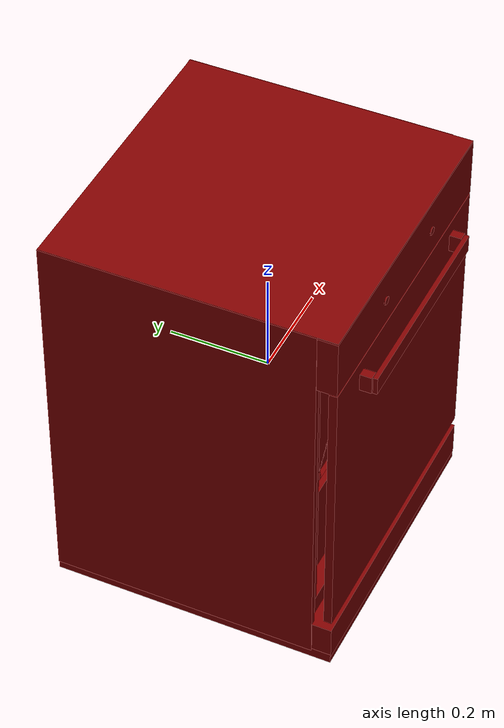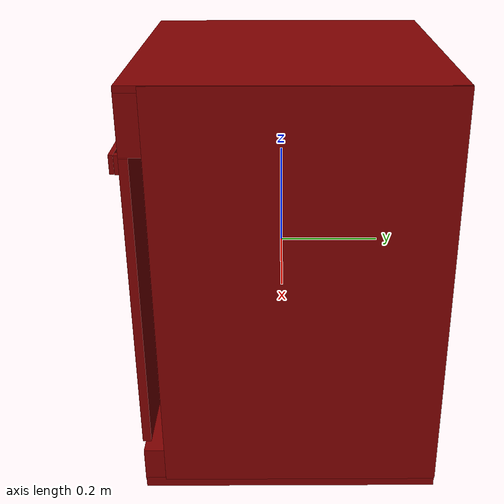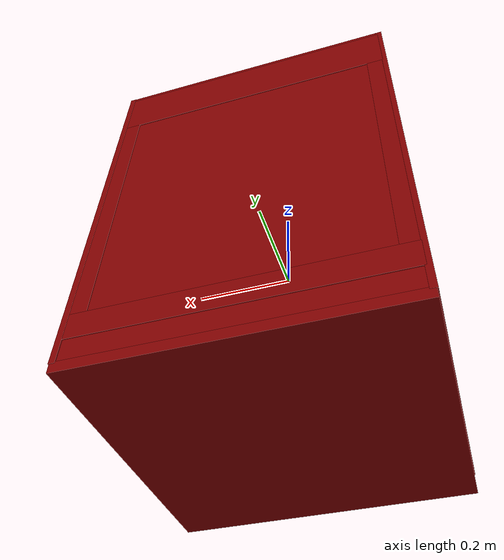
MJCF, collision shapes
<?xml version='1.0' encoding='UTF-8'?>
<mujoco model="model">
  <option timestep="0.002" gravity="0.0 0.0 -9.81"/>
  <compiler angle="radian"/>
  <asset>
    <mesh file="visuals/button_lock.obj" name="button_lock_vis"/>
    <mesh file="visuals/button_power.obj" name="button_power_vis"/>
    <mesh file="visuals/Body001.obj" name="Body001_vis"/>
    <mesh file="visuals/door.obj" name="door_vis"/>
    <mesh file="visuals/rack0.obj" name="rack0_vis"/>
    <mesh file="visuals/rack1.obj" name="rack1_vis"/>
    <texture file="visuals/T_BC001.png" name="Body001_material" type="2d"/>
    <material name="Body001_material" rgba="1 1 1 1.0" texture="Body001_material" shininess="0.5" specular="1.5"/>
    <texture file="visuals/T_BC001.png" name="button_lock_material" type="2d"/>
    <material name="button_lock_material" rgba="1 1 1 1.0" texture="button_lock_material" shininess="0.5" specular="0.3103448502657381"/>
    <texture file="visuals/T_BC001.png" name="button_power_material" type="2d"/>
    <material name="button_power_material" rgba="1 1 1 1.0" texture="button_power_material" shininess="0.5" specular="0.3103448502657381"/>
    <texture file="visuals/T_BC001.png" name="door_material" type="2d"/>
    <material name="door_material" rgba="1 1 1 1.0" texture="door_material" shininess="0.5" specular="1"/>
    <texture file="visuals/T_BC001.png" name="rack0_material" type="2d"/>
    <material name="rack0_material" rgba="1 1 1 1.0" texture="rack0_material" shininess="0.5" specular="2"/>
    <texture file="visuals/T_BC001.png" name="rack1_material" type="2d"/>
    <material name="rack1_material" rgba="1 1 1 1.0" texture="rack1_material" shininess="0.5" specular="2"/>
  </asset>
  <default>
    <default class="visual">
      <geom conaffinity="0" contype="0" group="1" type="mesh"/>
    </default>
    <default class="collision">
      <geom group="0" rgba="0.5 0 0 0.5"/>
    </default>
    <default class="spawn">
      <geom group="0" rgba="1 1 1 0.5" contype="0" conaffinity="0"/>
      <site group="0" rgba="1 1 1 0.5"/>
    </default>
    <default class="region">
      <geom group="1" conaffinity="0" contype="0" rgba="0 1 0 0"/>
    </default>
  </default>
  <worldbody>
    <body>
      <body name="object">
        <geom mesh="Body001_vis" type="mesh" solimp="0.998 0.998 0.001" solref="0.001 1" friction="0.95 0.3 0.1" class="visual" material="Body001_material"/>
        <geom class="collision" type="box" pos="0.00000000 0.28023259 0.00923848" size="0.2974483072757721 0.01758691854774952 0.3919452130794525" quat="1.0 0.0 0.0 0.0"/>
        <geom class="collision" type="box" pos="0.00000000 0.01652933 -0.38985538" size="0.2974483072757721 0.28312113881111145 0.0105096735060215" quat="1.0 0.0 0.0 0.0"/>
        <geom class="collision" type="box" pos="0.00000000 0.01652933 0.39592728" size="0.2974483072757721 0.28312158584594727 0.005803395062685013" quat="1.0 0.0 0.0 0.0"/>
        <geom class="collision" type="box" pos="-0.29314658 0.03568803 0.00923848" size="0.006236113607883453 0.26420560479164124 0.39194661378860474" quat="1.0 0.0 0.0 0.0"/>
        <geom class="collision" type="box" pos="0.29355502 0.03598000 0.00923848" size="0.00556898070499301 0.264498233795166 0.39194709062576294" quat="1.0 0.0 0.0 0.0"/>
        <geom class="collision" type="box" pos="-0.00070958 -0.24606627 0.34120473" size="0.2981281578540802 0.02128114365041256 0.058082692325115204" quat="1.0 0.0 0.0 0.0"/>
        <geom class="collision" type="box" pos="0.00000000 -0.24438491 -0.34873685" size="0.29744240641593933 0.022979695349931717 0.03576326742768288" quat="1.0 0.0 0.0 0.0"/>
        <geom class="collision" type="box" pos="-0.27317214 0.04061445 -0.00186177" size="0.015970002859830856 0.25929391384124756 0.28350600600242615" quat="1.0 0.0 0.0 0.0"/>
        <geom class="collision" type="box" pos="0.27302107 0.04061445 -0.00267194" size="0.016195055097341537 0.25929391384124756 0.28343233466148376" quat="1.0 0.0 0.0 0.0"/>
        <geom class="collision" type="box" pos="-0.00001626 0.04061445 0.33587483" size="0.2906419038772583 0.25929564237594604 0.05766905099153519" quat="1.0 0.0 0.0 0.0"/>
        <geom class="collision" type="box" pos="-0.00043224 0.04061445 -0.30906609" size="0.29022595286369324 0.25929516553878784 0.026424413546919823" quat="1.0 0.0 0.0 0.0"/>
        <body name="button_lock">
          <joint axis="0.0 1.0 0.0" pos="0.10144468 -0.26970397 0.34194511" limited="true" name="button_lock_joint" range="0.0 0.0012" type="slide" damping="1" frictionloss="1" armature=".01" stiffness="4" springref="-1"/>
          <geom mesh="button_lock_vis" type="mesh" solimp="0.998 0.998 0.001" solref="0.001 1" friction="0.95 0.3 0.1" class="visual" material="button_lock_material"/>
          <geom class="collision" type="cylinder" pos="0.10133774 -0.27087246 0.34192067" size="0.00803416594862938 0.0010736096883192658" quat="0.7071067094802856 0.7071068286895752 0.0 0.0"/>
        </body>
        <body name="button_power">
          <joint axis="0.0 1.0 0.0" pos="-0.10146830 -0.26970397 0.34194511" limited="true" name="button_power_joint" range="0.0 0.0012" type="slide" damping="1" frictionloss="1" armature=".01" stiffness="4" springref="-1"/>
          <geom mesh="button_power_vis" type="mesh" solimp="0.998 0.998 0.001" solref="0.001 1" friction="0.95 0.3 0.1" class="visual" material="button_power_material"/>
          <geom class="collision" type="cylinder" pos="-0.10142317 -0.27093090 0.34192067" size="0.00803416594862938 0.0010736096883192658" quat="0.7071067094802856 0.7071068286895752 0.0 0.0"/>
        </body>
        <body name="door">
          <joint axis="1.0 0.0 0.0" pos="-0.00146813 -0.26781762791479824 -0.2915180573451996" limited="true" name="door_joint" range="0.0 0.6035987755982988" type="hinge" damping="1" frictionloss="10" armature="1" stiffness="2"/>
          <geom mesh="door_vis" type="mesh" solimp="0.998 0.998 0.001" solref="0.001 1" friction="0.95 0.3 0.1" class="visual" material="door_material"/>
          <geom class="collision" type="box" pos="-0.00146813 -0.25969495 -0.00535130" size="0.29671090841293335 0.00812267791479826 0.2861667573451996" quat="1.0 0.0 0.0 0.0" name="door_main"/>
          <geom class="collision" type="box" pos="0.00149450 -0.29816349 0.24046911" size="0.2078951597213745 0.0043100034818053246 0.017797604203224182" quat="1.0 0.0 0.0 0.0" name="door_handle_main"/>
          <geom class="collision" type="box" pos="0.20415612 -0.28122191 0.24046910" size="0.00872084591537714 0.011564495041966438 0.01779758930206299" quat="1.0 0.0 0.0 0.0"/>
          <geom class="collision" type="box" pos="-0.19982393 -0.28122191 0.24046913" size="0.00872084591537714 0.011564495041966438 0.01779758930206299" quat="1.0 0.0 0.0 0.0"/>
        </body>
        <body name="rack0">
          <geom class="region" name="reg_rack0" type="box" pos="-0.0006009049999999988 0.026985384999999987 -0.106687155" size="0.21967144500000002 0.21001071500000001 0.116482165"/>
          <joint axis="0.0 -1.0 0.0" pos="0.00157052 0.02678297 -0.13533516" limited="true" name="rack0_joint" range="0.0 0.065" type="slide" damping="1" frictionloss="1" armature=".01" stiffness="0.05"/>
          <geom mesh="rack0_vis" type="mesh" solimp="0.998 0.998 0.001" solref="0.001 1" friction="0.95 0.3 0.1" class="visual" material="rack0_material"/>
          <geom class="collision" type="box" pos="-0.24047074 0.02570850 -0.13568881" size="0.005536212120205164 0.23354065418243408 0.10069926083087921" quat="1.0 0.0 0.0 0.0"/>
          <geom class="collision" type="box" pos="0.24430199 0.02570850 -0.13568881" size="0.005536212120205164 0.23354122042655945 0.10069926083087921" quat="1.0 0.0 0.0 0.0"/>
          <geom class="collision" type="box" pos="0.00025346 0.25270723 -0.13435307" size="0.2335447371006012 0.005536173470318317 0.09926482290029526" quat="1.0 0.0 0.0 0.0"/>
          <geom class="collision" type="box" pos="0.00025346 0.02600502 -0.23255304" size="0.23653914034366608 0.229714035987854 0.0023557692766189575" quat="1.0 0.0 0.0 0.0"/>
          <geom class="collision" type="box" pos="-0.14977731 -0.20203042 -0.13279901" size="0.08351397514343262 0.005536250304430723 0.09600427746772766" quat="1.0 0.0 0.0 0.0"/>
          <geom class="collision" type="box" pos="0.00025346 -0.20203042 -0.18936542" size="0.2335447371006012 0.005536250304430723 0.039437856525182724" quat="1.0 0.0 0.0 0.0"/>
          <geom class="collision" type="box" pos="0.17224070 -0.20203042 -0.13279901" size="0.07321833819150925 0.005536250304430723 0.09600427746772766" quat="1.0 0.0 0.0 0.0"/>
          <geom class="collision" type="box" pos="0.01558548 -0.19978114 -0.08121934" size="0.08813342452049255 0.0038762132171541452 0.0038762132171541452" quat="1.0 0.0 0.0 0.0"/>
          <geom class="collision" type="box" pos="0.01558548 -0.20410076 -0.03870263" size="0.08813340216875076 0.0038762118201702833 0.0038762118201702833" quat="1.0 0.0 0.0 0.0"/>
          <geom class="collision" type="cylinder" pos="-0.01910914 0.17065142 -0.17214993" size="0.0025402321480214596 0.061900075525045395" quat="4.3319283804521547e-07 -2.0873290651479692e-08 0.0992436558008194 -0.9950631856918335"/>
          <geom class="collision" type="cylinder" pos="-0.01910915 0.08196175 -0.17207639" size="0.0025402321480214596 0.061900075525045395" quat="7.976017286637216e-07 -4.665985642304804e-08 -0.08496012538671494 -0.99638432264328"/>
          <geom class="collision" type="cylinder" pos="-0.01910915 -0.02579092 -0.17218566" size="0.0025402321480214596 0.0619000680744648" quat="5.6451420960002e-07 -8.122519545850082e-08 -0.1087351143360138 -0.9940707683563232"/>
          <geom class="collision" type="cylinder" pos="-0.01910915 -0.13231845 -0.17207639" size="0.0025402321480214596 0.061900075525045395" quat="7.976017286637216e-07 -4.665985642304804e-08 -0.08496012538671494 -0.99638432264328"/>
          <geom class="collision" type="cylinder" pos="-0.05855283 0.17094482 -0.17209080" size="0.0025402321480214596 0.061900075525045395" quat="4.3319283804521547e-07 -2.0873290651479692e-08 0.0992436558008194 -0.9950631856918335"/>
          <geom class="collision" type="cylinder" pos="-0.05855283 0.08225673 -0.17212705" size="0.0025402321480214596 0.061900075525045395" quat="7.976017286637216e-07 -4.665985642304804e-08 -0.08496012538671494 -0.99638432264328"/>
          <geom class="collision" type="cylinder" pos="-0.05855283 -0.02549870 -0.17225036" size="0.0025402321480214596 0.0619000680744648" quat="5.6451420960002e-07 -8.122519545850082e-08 -0.1087351143360138 -0.9940707683563232"/>
          <geom class="collision" type="cylinder" pos="-0.05855283 -0.13202347 -0.17212705" size="0.0025402321480214596 0.061900075525045395" quat="7.976017286637216e-07 -4.665985642304804e-08 -0.08496012538671494 -0.99638432264328"/>
          <geom class="collision" type="cylinder" pos="-0.09647948 0.17094482 -0.17209080" size="0.0025402321480214596 0.061900075525045395" quat="4.3319283804521547e-07 -2.0873290651479692e-08 0.0992436558008194 -0.9950631856918335"/>
          <geom class="collision" type="cylinder" pos="-0.09647948 0.08225673 -0.17212705" size="0.0025402321480214596 0.061900075525045395" quat="7.976017286637216e-07 -4.665985642304804e-08 -0.08496012538671494 -0.99638432264328"/>
          <geom class="collision" type="cylinder" pos="-0.09647948 -0.02549870 -0.17225036" size="0.0025402321480214596 0.0619000680744648" quat="5.6451420960002e-07 -8.122519545850082e-08 -0.1087351143360138 -0.9940707683563232"/>
          <geom class="collision" type="cylinder" pos="-0.09647948 -0.13202347 -0.17212705" size="0.0025402321480214596 0.061900075525045395" quat="7.976017286637216e-07 -4.665985642304804e-08 -0.08496012538671494 -0.99638432264328"/>
          <geom class="collision" type="cylinder" pos="-0.13537984 0.17094482 -0.17209080" size="0.0025402321480214596 0.061900075525045395" quat="4.3319283804521547e-07 -2.0873290651479692e-08 0.0992436558008194 -0.9950631856918335"/>
          <geom class="collision" type="cylinder" pos="-0.13537984 0.08225673 -0.17212705" size="0.0025402321480214596 0.061900075525045395" quat="7.976017286637216e-07 -4.665985642304804e-08 -0.08496012538671494 -0.99638432264328"/>
          <geom class="collision" type="cylinder" pos="-0.13537984 -0.02549870 -0.17225036" size="0.0025402321480214596 0.0619000680744648" quat="5.6451420960002e-07 -8.122519545850082e-08 -0.1087351143360138 -0.9940707683563232"/>
          <geom class="collision" type="cylinder" pos="-0.13537984 -0.13202347 -0.17212705" size="0.0025402321480214596 0.061900075525045395" quat="7.976017286637216e-07 -4.665985642304804e-08 -0.08496012538671494 -0.99638432264328"/>
          <geom class="collision" type="cylinder" pos="-0.16553205 0.17094481 -0.17209083" size="0.0025402321480214596 0.061900075525045395" quat="4.3319283804521547e-07 -2.0873290651479692e-08 0.0992436558008194 -0.9950631856918335"/>
          <geom class="collision" type="cylinder" pos="-0.16553205 0.08225671 -0.17212707" size="0.0025402321480214596 0.061900075525045395" quat="7.976017286637216e-07 -4.665985642304804e-08 -0.08496012538671494 -0.99638432264328"/>
          <geom class="collision" type="cylinder" pos="-0.16553205 -0.02549872 -0.17225038" size="0.0025402321480214596 0.0619000680744648" quat="5.6451420960002e-07 -8.122519545850082e-08 -0.1087351143360138 -0.9940707683563232"/>
          <geom class="collision" type="cylinder" pos="-0.16553205 -0.13202350 -0.17212707" size="0.0025402321480214596 0.061900075525045395" quat="7.976017286637216e-07 -4.665985642304804e-08 -0.08496012538671494 -0.99638432264328"/>
          <geom class="collision" type="cylinder" pos="-0.20472381 0.17094481 -0.17209083" size="0.0025402321480214596 0.061900075525045395" quat="4.3319283804521547e-07 -2.0873290651479692e-08 0.0992436558008194 -0.9950631856918335"/>
          <geom class="collision" type="cylinder" pos="-0.20472381 0.08225671 -0.17212707" size="0.0025402321480214596 0.061900075525045395" quat="7.976017286637216e-07 -4.665985642304804e-08 -0.08496012538671494 -0.99638432264328"/>
          <geom class="collision" type="cylinder" pos="-0.20472381 -0.02549872 -0.17225038" size="0.0025402321480214596 0.0619000680744648" quat="5.6451420960002e-07 -8.122519545850082e-08 -0.1087351143360138 -0.9940707683563232"/>
          <geom class="collision" type="cylinder" pos="-0.20472381 -0.13202350 -0.17212707" size="0.0025402321480214596 0.061900075525045395" quat="7.976017286637216e-07 -4.665985642304804e-08 -0.08496012538671494 -0.99638432264328"/>
          <geom class="collision" type="cylinder" pos="0.01846163 0.17094482 -0.17209080" size="0.0025402321480214596 0.061900075525045395" quat="4.3319283804521547e-07 -2.0873290651479692e-08 0.0992436558008194 -0.9950631856918335"/>
          <geom class="collision" type="cylinder" pos="0.01846163 0.08225673 -0.17212705" size="0.0025402321480214596 0.061900075525045395" quat="7.976017286637216e-07 -4.665985642304804e-08 -0.08496012538671494 -0.99638432264328"/>
          <geom class="collision" type="cylinder" pos="0.01846163 -0.02549870 -0.17225036" size="0.0025402321480214596 0.0619000680744648" quat="5.6451420960002e-07 -8.122519545850082e-08 -0.1087351143360138 -0.9940707683563232"/>
          <geom class="collision" type="cylinder" pos="0.01846163 -0.13202347 -0.17212705" size="0.0025402321480214596 0.061900075525045395" quat="7.976017286637216e-07 -4.665985642304804e-08 -0.08496012538671494 -0.99638432264328"/>
          <geom class="collision" type="cylinder" pos="0.05753631 0.17094482 -0.17209080" size="0.0025402321480214596 0.061900075525045395" quat="4.3319283804521547e-07 -2.0873290651479692e-08 0.0992436558008194 -0.9950631856918335"/>
          <geom class="collision" type="cylinder" pos="0.05753631 0.08225673 -0.17212705" size="0.0025402321480214596 0.061900075525045395" quat="7.976017286637216e-07 -4.665985642304804e-08 -0.08496012538671494 -0.99638432264328"/>
          <geom class="collision" type="cylinder" pos="0.05753631 -0.02549870 -0.17225036" size="0.0025402321480214596 0.0619000680744648" quat="5.6451420960002e-07 -8.122519545850082e-08 -0.1087351143360138 -0.9940707683563232"/>
          <geom class="collision" type="cylinder" pos="0.05753631 -0.13202347 -0.17212705" size="0.0025402321480214596 0.061900075525045395" quat="7.976017286637216e-07 -4.665985642304804e-08 -0.08496012538671494 -0.99638432264328"/>
          <geom class="collision" type="cylinder" pos="0.09570927 0.17094482 -0.17209080" size="0.0025402321480214596 0.061900075525045395" quat="4.3319283804521547e-07 -2.0873290651479692e-08 0.0992436558008194 -0.9950631856918335"/>
          <geom class="collision" type="cylinder" pos="0.09570927 0.08225673 -0.17212705" size="0.0025402321480214596 0.061900075525045395" quat="7.976017286637216e-07 -4.665985642304804e-08 -0.08496012538671494 -0.99638432264328"/>
          <geom class="collision" type="cylinder" pos="0.09570927 -0.02549870 -0.17225036" size="0.0025402321480214596 0.0619000680744648" quat="5.6451420960002e-07 -8.122519545850082e-08 -0.1087351143360138 -0.9940707683563232"/>
          <geom class="collision" type="cylinder" pos="0.09570927 -0.13202347 -0.17212705" size="0.0025402321480214596 0.061900075525045395" quat="7.976017286637216e-07 -4.665985642304804e-08 -0.08496012538671494 -0.99638432264328"/>
          <geom class="collision" type="cylinder" pos="0.13423637 0.17094482 -0.17209080" size="0.0025402321480214596 0.061900075525045395" quat="4.3319283804521547e-07 -2.0873290651479692e-08 0.0992436558008194 -0.9950631856918335"/>
          <geom class="collision" type="cylinder" pos="0.13423637 0.08225673 -0.17212705" size="0.0025402321480214596 0.061900075525045395" quat="7.976017286637216e-07 -4.665985642304804e-08 -0.08496012538671494 -0.99638432264328"/>
          <geom class="collision" type="cylinder" pos="0.13423637 -0.02549870 -0.17225036" size="0.0025402321480214596 0.0619000680744648" quat="5.6451420960002e-07 -8.122519545850082e-08 -0.1087351143360138 -0.9940707683563232"/>
          <geom class="collision" type="cylinder" pos="0.13423637 -0.13202347 -0.17212705" size="0.0025402321480214596 0.061900075525045395" quat="7.976017286637216e-07 -4.665985642304804e-08 -0.08496012538671494 -0.99638432264328"/>
          <geom class="collision" type="cylinder" pos="0.17325029 0.17094482 -0.17209080" size="0.0025402321480214596 0.061900075525045395" quat="4.3319283804521547e-07 -2.0873290651479692e-08 0.0992436558008194 -0.9950631856918335"/>
          <geom class="collision" type="cylinder" pos="0.17325029 0.08225673 -0.17212705" size="0.0025402321480214596 0.061900075525045395" quat="7.976017286637216e-07 -4.665985642304804e-08 -0.08496012538671494 -0.99638432264328"/>
          <geom class="collision" type="cylinder" pos="0.17325029 -0.02549870 -0.17225036" size="0.0025402321480214596 0.0619000680744648" quat="5.6451420960002e-07 -8.122519545850082e-08 -0.1087351143360138 -0.9940707683563232"/>
          <geom class="collision" type="cylinder" pos="0.17325029 -0.13202347 -0.17212705" size="0.0025402321480214596 0.061900075525045395" quat="7.976017286637216e-07 -4.665985642304804e-08 -0.08496012538671494 -0.99638432264328"/>
          <geom class="collision" type="cylinder" pos="0.21194369 0.17094482 -0.17209080" size="0.0025402321480214596 0.061900075525045395" quat="4.3319283804521547e-07 -2.0873290651479692e-08 0.0992436558008194 -0.9950631856918335"/>
          <geom class="collision" type="cylinder" pos="0.21194369 0.08225673 -0.17212705" size="0.0025402321480214596 0.061900075525045395" quat="7.976017286637216e-07 -4.665985642304804e-08 -0.08496012538671494 -0.99638432264328"/>
          <geom class="collision" type="cylinder" pos="0.21194369 -0.02549870 -0.17225036" size="0.0025402321480214596 0.0619000680744648" quat="5.6451420960002e-07 -8.122519545850082e-08 -0.1087351143360138 -0.9940707683563232"/>
          <geom class="collision" type="cylinder" pos="0.21194369 -0.13202347 -0.17212705" size="0.0025402321480214596 0.061900075525045395" quat="7.976017286637216e-07 -4.665985642304804e-08 -0.08496012538671494 -0.99638432264328"/>
        </body>
        <body name="rack1">
          <geom class="region" name="reg_rack1" type="box" pos="0.002971575000000004 0.027132309999999993 0.15194739499999999" size="0.225257065 0.20880156 0.120845555"/>
          <joint axis="0.0 -1.0 0.0" pos="0.00157052 0.02678297 0.11460888" limited="true" name="rack1_joint" range="0.0 0.21" type="slide" damping="1" frictionloss="1" armature=".01" stiffness="0.05"/>
          <geom mesh="rack1_vis" type="mesh" solimp="0.998 0.998 0.001" solref="0.001 1" friction="0.95 0.3 0.1" class="visual" material="rack1_material"/>
          <geom class="collision" type="box" pos="-0.24047074 0.02570850 0.11364017" size="0.005536212120205164 0.2335447371006012 0.09884707629680634" quat="1.0 0.0 0.0 0.0"/>
          <geom class="collision" type="box" pos="0.24372418 0.02570850 0.11364017" size="0.005536212120205164 0.2335447371006012 0.09884707629680634" quat="1.0 0.0 0.0 0.0"/>
          <geom class="collision" type="box" pos="-0.14977731 -0.20203042 0.11364017" size="0.08351397514343262 0.005536250304430723 0.09884707629680634" quat="1.0 0.0 0.0 0.0"/>
          <geom class="collision" type="box" pos="0.00025346 0.25610791 0.11364017" size="0.2335447371006012 0.005536250304430723 0.09884707629680634" quat="1.0 0.0 0.0 0.0"/>
          <geom class="collision" type="box" pos="0.00025346 0.02782984 0.02084812" size="0.23218710720539093 0.2305005043745041 0.005536167416721582" quat="1.0 0.0 0.0 0.0"/>
          <geom class="collision" type="box" pos="0.00025346 -0.20203042 0.05707375" size="0.2335447371006012 0.005536250304430723 0.0422806590795517" quat="1.0 0.0 0.0 0.0"/>
          <geom class="collision" type="box" pos="0.17224070 -0.20203042 0.11364017" size="0.07321833819150925 0.005536250304430723 0.09884707629680634" quat="1.0 0.0 0.0 0.0"/>
          <geom class="collision" type="box" pos="0.01558548 -0.19978114 0.16806264" size="0.08813353627920151 0.003876220202073455 0.003876220202073455" quat="1.0 0.0 0.0 0.0"/>
          <geom class="collision" type="box" pos="0.01558548 -0.20410076 0.21057935" size="0.08813351392745972 0.003876218805089593 0.003876218805089593" quat="1.0 0.0 0.0 0.0"/>
          <geom class="collision" type="cylinder" pos="0.21194369 0.17094482 0.07785728" size="0.0025402321480214596 0.061900075525045395" quat="4.3319283804521547e-07 -2.0873290651479692e-08 0.0992436558008194 -0.9950631856918335"/>
          <geom class="collision" type="cylinder" pos="0.17325029 0.17094482 0.07785728" size="0.0025402321480214596 0.061900075525045395" quat="4.3319283804521547e-07 -2.0873290651479692e-08 0.0992436558008194 -0.9950631856918335"/>
          <geom class="collision" type="cylinder" pos="0.13423637 0.17094482 0.07785728" size="0.0025402321480214596 0.061900075525045395" quat="4.3319283804521547e-07 -2.0873290651479692e-08 0.0992436558008194 -0.9950631856918335"/>
          <geom class="collision" type="cylinder" pos="0.09570927 0.17094482 0.07785728" size="0.0025402321480214596 0.061900075525045395" quat="4.3319283804521547e-07 -2.0873290651479692e-08 0.0992436558008194 -0.9950631856918335"/>
          <geom class="collision" type="cylinder" pos="0.05753631 0.17094482 0.07785728" size="0.0025402321480214596 0.061900075525045395" quat="4.3319283804521547e-07 -2.0873290651479692e-08 0.0992436558008194 -0.9950631856918335"/>
          <geom class="collision" type="cylinder" pos="0.01846163 0.17094482 0.07785728" size="0.0025402321480214596 0.061900075525045395" quat="4.3319283804521547e-07 -2.0873290651479692e-08 0.0992436558008194 -0.9950631856918335"/>
          <geom class="collision" type="cylinder" pos="-0.20472381 0.17094481 0.07785726" size="0.0025402321480214596 0.061900075525045395" quat="4.3319283804521547e-07 -2.0873290651479692e-08 0.0992436558008194 -0.9950631856918335"/>
          <geom class="collision" type="cylinder" pos="-0.16553205 0.17094481 0.07785726" size="0.0025402321480214596 0.061900075525045395" quat="4.3319283804521547e-07 -2.0873290651479692e-08 0.0992436558008194 -0.9950631856918335"/>
          <geom class="collision" type="cylinder" pos="-0.13537984 0.17094482 0.07785728" size="0.0025402321480214596 0.061900075525045395" quat="4.3319283804521547e-07 -2.0873290651479692e-08 0.0992436558008194 -0.9950631856918335"/>
          <geom class="collision" type="cylinder" pos="-0.09647948 0.17094482 0.07785728" size="0.0025402321480214596 0.061900075525045395" quat="4.3319283804521547e-07 -2.0873290651479692e-08 0.0992436558008194 -0.9950631856918335"/>
          <geom class="collision" type="cylinder" pos="-0.05855283 0.17094482 0.07785728" size="0.0025402321480214596 0.061900075525045395" quat="4.3319283804521547e-07 -2.0873290651479692e-08 0.0992436558008194 -0.9950631856918335"/>
          <geom class="collision" type="cylinder" pos="-0.01910914 0.17065142 0.07779817" size="0.0025402321480214596 0.061900075525045395" quat="4.3319283804521547e-07 -2.0873290651479692e-08 0.0992436558008194 -0.9950631856918335"/>
          <geom class="collision" type="cylinder" pos="0.21194369 0.08225673 0.07782102" size="0.0025402321480214596 0.061900075525045395" quat="7.976017286637216e-07 -4.665985642304804e-08 -0.08496012538671494 -0.99638432264328"/>
          <geom class="collision" type="cylinder" pos="0.17325029 0.08225673 0.07782102" size="0.0025402321480214596 0.061900075525045395" quat="7.976017286637216e-07 -4.665985642304804e-08 -0.08496012538671494 -0.99638432264328"/>
          <geom class="collision" type="cylinder" pos="0.13423637 0.08225673 0.07782102" size="0.0025402321480214596 0.061900075525045395" quat="7.976017286637216e-07 -4.665985642304804e-08 -0.08496012538671494 -0.99638432264328"/>
          <geom class="collision" type="cylinder" pos="0.09570927 0.08225673 0.07782102" size="0.0025402321480214596 0.061900075525045395" quat="7.976017286637216e-07 -4.665985642304804e-08 -0.08496012538671494 -0.99638432264328"/>
          <geom class="collision" type="cylinder" pos="0.05753631 0.08225673 0.07782102" size="0.0025402321480214596 0.061900075525045395" quat="7.976017286637216e-07 -4.665985642304804e-08 -0.08496012538671494 -0.99638432264328"/>
          <geom class="collision" type="cylinder" pos="0.01846163 0.08225673 0.07782102" size="0.0025402321480214596 0.061900075525045395" quat="7.976017286637216e-07 -4.665985642304804e-08 -0.08496012538671494 -0.99638432264328"/>
          <geom class="collision" type="cylinder" pos="-0.20472381 0.08225671 0.07782101" size="0.0025402321480214596 0.061900075525045395" quat="7.976017286637216e-07 -4.665985642304804e-08 -0.08496012538671494 -0.99638432264328"/>
          <geom class="collision" type="cylinder" pos="-0.16553205 0.08225671 0.07782101" size="0.0025402321480214596 0.061900075525045395" quat="7.976017286637216e-07 -4.665985642304804e-08 -0.08496012538671494 -0.99638432264328"/>
          <geom class="collision" type="cylinder" pos="-0.13537984 0.08225673 0.07782102" size="0.0025402321480214596 0.061900075525045395" quat="7.976017286637216e-07 -4.665985642304804e-08 -0.08496012538671494 -0.99638432264328"/>
          <geom class="collision" type="cylinder" pos="-0.09647948 0.08225673 0.07782102" size="0.0025402321480214596 0.061900075525045395" quat="7.976017286637216e-07 -4.665985642304804e-08 -0.08496012538671494 -0.99638432264328"/>
          <geom class="collision" type="cylinder" pos="-0.05855283 0.08225673 0.07782102" size="0.0025402321480214596 0.061900075525045395" quat="7.976017286637216e-07 -4.665985642304804e-08 -0.08496012538671494 -0.99638432264328"/>
          <geom class="collision" type="cylinder" pos="-0.01910915 0.08196175 0.07787169" size="0.0025402321480214596 0.061900075525045395" quat="7.976017286637216e-07 -4.665985642304804e-08 -0.08496012538671494 -0.99638432264328"/>
          <geom class="collision" type="cylinder" pos="0.21194369 -0.02549870 0.07769771" size="0.0025402321480214596 0.0619000680744648" quat="5.6451420960002e-07 -8.122519545850082e-08 -0.1087351143360138 -0.9940707683563232"/>
          <geom class="collision" type="cylinder" pos="0.17325029 -0.02549870 0.07769771" size="0.0025402321480214596 0.0619000680744648" quat="5.6451420960002e-07 -8.122519545850082e-08 -0.1087351143360138 -0.9940707683563232"/>
          <geom class="collision" type="cylinder" pos="0.13423637 -0.02549870 0.07769771" size="0.0025402321480214596 0.0619000680744648" quat="5.6451420960002e-07 -8.122519545850082e-08 -0.1087351143360138 -0.9940707683563232"/>
          <geom class="collision" type="cylinder" pos="0.09570927 -0.02549870 0.07769771" size="0.0025402321480214596 0.0619000680744648" quat="5.6451420960002e-07 -8.122519545850082e-08 -0.1087351143360138 -0.9940707683563232"/>
          <geom class="collision" type="cylinder" pos="0.05753631 -0.02549870 0.07769771" size="0.0025402321480214596 0.0619000680744648" quat="5.6451420960002e-07 -8.122519545850082e-08 -0.1087351143360138 -0.9940707683563232"/>
          <geom class="collision" type="cylinder" pos="0.01846163 -0.02549870 0.07769771" size="0.0025402321480214596 0.0619000680744648" quat="5.6451420960002e-07 -8.122519545850082e-08 -0.1087351143360138 -0.9940707683563232"/>
          <geom class="collision" type="cylinder" pos="-0.20472381 -0.02549872 0.07769770" size="0.0025402321480214596 0.0619000680744648" quat="5.6451420960002e-07 -8.122519545850082e-08 -0.1087351143360138 -0.9940707683563232"/>
          <geom class="collision" type="cylinder" pos="-0.16553205 -0.02549872 0.07769770" size="0.0025402321480214596 0.0619000680744648" quat="5.6451420960002e-07 -8.122519545850082e-08 -0.1087351143360138 -0.9940707683563232"/>
          <geom class="collision" type="cylinder" pos="-0.13537984 -0.02549870 0.07769771" size="0.0025402321480214596 0.0619000680744648" quat="5.6451420960002e-07 -8.122519545850082e-08 -0.1087351143360138 -0.9940707683563232"/>
          <geom class="collision" type="cylinder" pos="-0.09647948 -0.02549870 0.07769771" size="0.0025402321480214596 0.0619000680744648" quat="5.6451420960002e-07 -8.122519545850082e-08 -0.1087351143360138 -0.9940707683563232"/>
          <geom class="collision" type="cylinder" pos="-0.05855283 -0.02549870 0.07769771" size="0.0025402321480214596 0.0619000680744648" quat="5.6451420960002e-07 -8.122519545850082e-08 -0.1087351143360138 -0.9940707683563232"/>
          <geom class="collision" type="cylinder" pos="-0.01910915 -0.02579092 0.07776241" size="0.0025402321480214596 0.0619000680744648" quat="5.6451420960002e-07 -8.122519545850082e-08 -0.1087351143360138 -0.9940707683563232"/>
          <geom class="collision" type="cylinder" pos="0.21194369 -0.13202347 0.07782102" size="0.0025402321480214596 0.061900075525045395" quat="7.976017286637216e-07 -4.665985642304804e-08 -0.08496012538671494 -0.99638432264328"/>
          <geom class="collision" type="cylinder" pos="0.17325029 -0.13202347 0.07782102" size="0.0025402321480214596 0.061900075525045395" quat="7.976017286637216e-07 -4.665985642304804e-08 -0.08496012538671494 -0.99638432264328"/>
          <geom class="collision" type="cylinder" pos="0.13423637 -0.13202347 0.07782102" size="0.0025402321480214596 0.061900075525045395" quat="7.976017286637216e-07 -4.665985642304804e-08 -0.08496012538671494 -0.99638432264328"/>
          <geom class="collision" type="cylinder" pos="0.09570927 -0.13202347 0.07782102" size="0.0025402321480214596 0.061900075525045395" quat="7.976017286637216e-07 -4.665985642304804e-08 -0.08496012538671494 -0.99638432264328"/>
          <geom class="collision" type="cylinder" pos="0.05753631 -0.13202347 0.07782102" size="0.0025402321480214596 0.061900075525045395" quat="7.976017286637216e-07 -4.665985642304804e-08 -0.08496012538671494 -0.99638432264328"/>
          <geom class="collision" type="cylinder" pos="0.01846163 -0.13202347 0.07782102" size="0.0025402321480214596 0.061900075525045395" quat="7.976017286637216e-07 -4.665985642304804e-08 -0.08496012538671494 -0.99638432264328"/>
          <geom class="collision" type="cylinder" pos="-0.20472381 -0.13202350 0.07782101" size="0.0025402321480214596 0.061900075525045395" quat="7.976017286637216e-07 -4.665985642304804e-08 -0.08496012538671494 -0.99638432264328"/>
          <geom class="collision" type="cylinder" pos="-0.16553205 -0.13202350 0.07782101" size="0.0025402321480214596 0.061900075525045395" quat="7.976017286637216e-07 -4.665985642304804e-08 -0.08496012538671494 -0.99638432264328"/>
          <geom class="collision" type="cylinder" pos="-0.13537984 -0.13202347 0.07782102" size="0.0025402321480214596 0.061900075525045395" quat="7.976017286637216e-07 -4.665985642304804e-08 -0.08496012538671494 -0.99638432264328"/>
          <geom class="collision" type="cylinder" pos="-0.09647948 -0.13202347 0.07782102" size="0.0025402321480214596 0.061900075525045395" quat="7.976017286637216e-07 -4.665985642304804e-08 -0.08496012538671494 -0.99638432264328"/>
          <geom class="collision" type="cylinder" pos="-0.05855283 -0.13202347 0.07782102" size="0.0025402321480214596 0.061900075525045395" quat="7.976017286637216e-07 -4.665985642304804e-08 -0.08496012538671494 -0.99638432264328"/>
          <geom class="collision" type="cylinder" pos="-0.01910915 -0.13231845 0.07787169" size="0.0025402321480214596 0.061900075525045395" quat="7.976017286637216e-07 -4.665985642304804e-08 -0.08496012538671494 -0.99638432264328"/>
        </body>
        <geom class="region" name="reg_int" type="box" pos="0.0026757649999999966 0.014574484999999984 -0.0027314400000000016" size="0.241942755 0.238522485 0.27566756000000003"/>
        <geom class="region" name="reg_main" type="box" pos="0.0 0.01670865499999999 0.0" size="0.30100013 0.28600008499999996 0.4034556"/>
      </body>
    </body>
  </worldbody>
  <actuator>
    <motor name="button_lock_joint_actuator" joint="button_lock_joint" gear="0.5"/>
    <motor name="button_power_joint_actuator" joint="button_power_joint" gear="0.5"/>
    <motor name="door_joint_actuator" joint="door_joint" gear="50"/>
    <motor name="rack0_joint_actuator" joint="rack0_joint" gear="50"/>
    <motor name="rack1_joint_actuator" joint="rack1_joint" gear="50"/>
  </actuator>
</mujoco>
